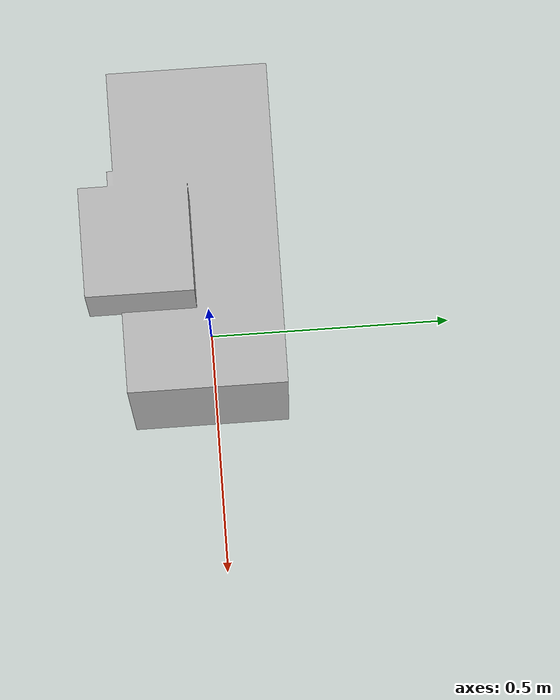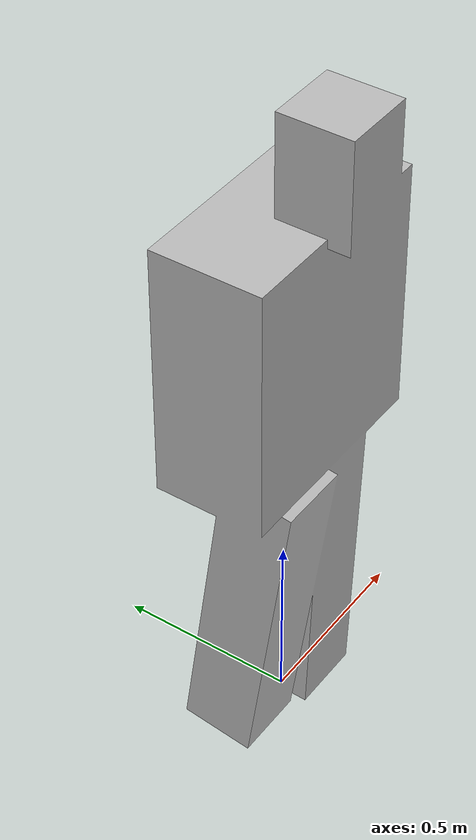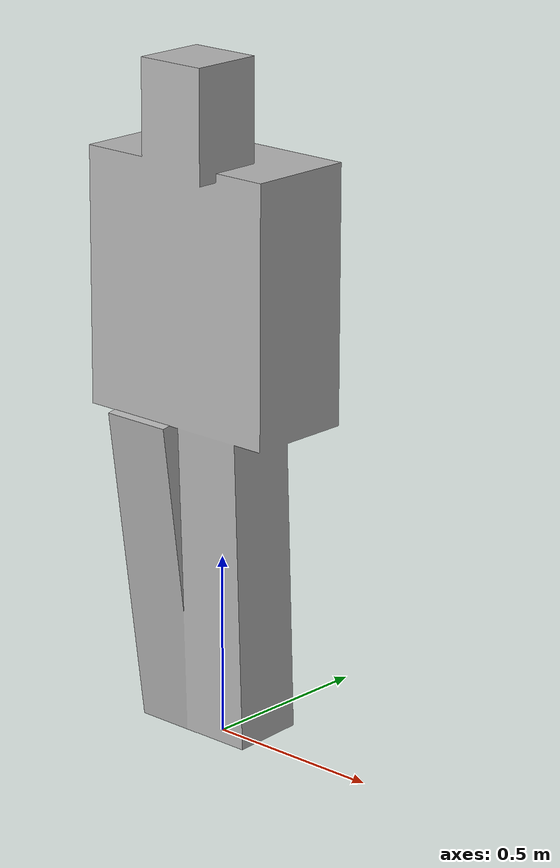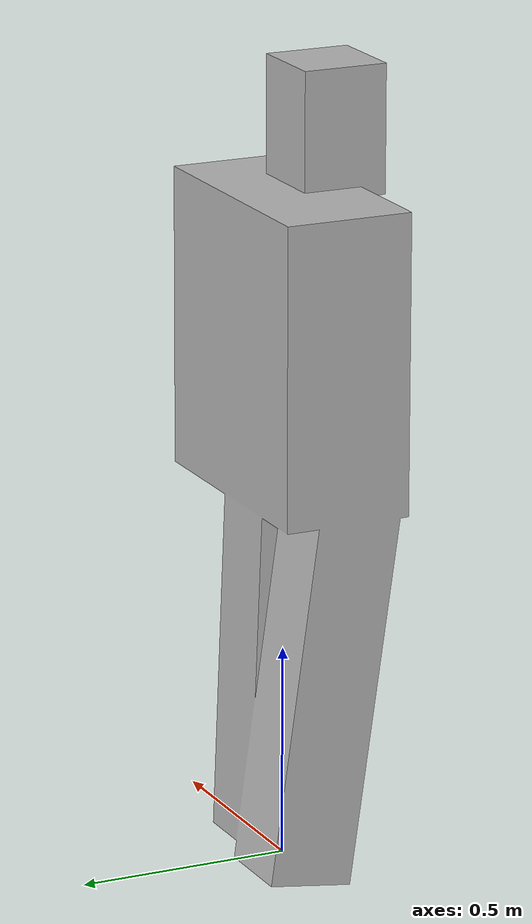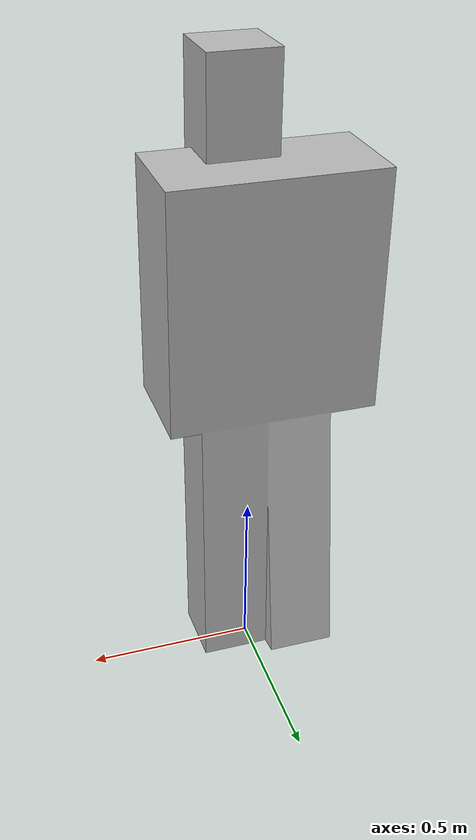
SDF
<?xml version='1.0'?>
<sdf version="1.5">

  <model name="human_male_nathan">
    <static>true</static>
    <link name="link">

      <inertial>
        <mass>60.0</mass>
        <inertia>
          <ixx>10.0</ixx>       <!-- for a box: ixx = 0.083 * mass * (y*y + z*z) -->
          <ixy>0.0</ixy>       <!-- for a box: ixy = 0 -->
          <ixz>0.0</ixz>       <!-- for a box: ixz = 0 -->
          <iyy>10.0</iyy>       <!-- for a box: iyy = 0.083 * mass * (x*x + z*z) -->
          <iyz>0.0</iyz>       <!-- for a box: iyz = 0 -->
          <izz>10.0</izz>      <!-- for a box: izz = 0.083 * mass * (x*x + y*y) -->
        </inertia>
      </inertial>

      <collision name="collision">
        <geometry>
          <mesh>
            <uri>model://human_male_nathan/human_male_nathan_collision.dae</uri>
          </mesh>
        </geometry>
      </collision>

      <visual name="visual">
        <geometry>
          <mesh>
            <uri>model://human_male_nathan/human_male_nathan.dae</uri>
          </mesh>
        </geometry>
      </visual>

    </link>
  </model>

</sdf>
